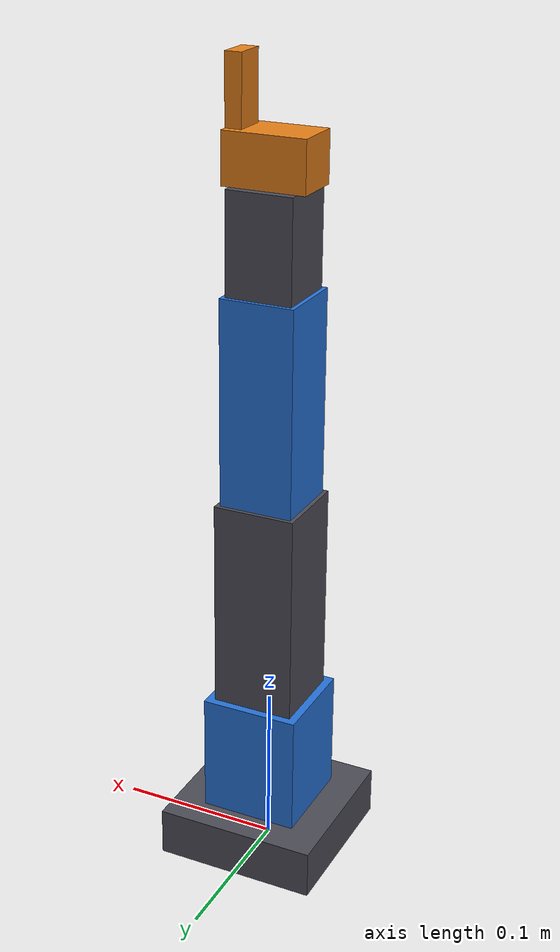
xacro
<?xml version="1.0"?>
<robot xmlns:xacro="http://www.ros.org/wiki/xacro" name="so101">

  <xacro:arg name="use_placeholder" default="true"/>

  <xacro:if value="$(arg use_placeholder)">
    <xacro:include filename="$(find so101_description)/urdf/so101_placeholder.urdf.xacro"/>
  </xacro:if>

  <xacro:unless value="$(arg use_placeholder)">
    <!-- TODO(hardware): provide urdf/so101_official.urdf.xacro per FETCH_OFFICIAL_URDF.md -->
    <xacro:include filename="$(find so101_description)/urdf/so101_official.urdf.xacro"/>
  </xacro:unless>

</robot>

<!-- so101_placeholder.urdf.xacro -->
<robot xmlns:xacro="http://www.ros.org/wiki/xacro" name="so101">

  <!-- ── Link lengths (m), from robot_system/kinematics/geometry.py ────────── -->
  <xacro:property name="L0" value="0.075"/>   <!-- base plate -> shoulder pivot -->
  <xacro:property name="L1" value="0.130"/>   <!-- shoulder -> elbow            -->
  <xacro:property name="L2" value="0.125"/>   <!-- elbow -> wrist               -->
  <xacro:property name="L3" value="0.060"/>   <!-- wrist -> gripper tip          -->

  <!-- ── Joint limits (rad) — derived from config.py tick ranges, see TODO ── -->
  <!-- scale = 2*pi / 4096 ≈ 0.001534 rad/tick about centre 2048              -->
  <xacro:property name="base_lo"     value="-3.14"/>  <!-- TODO: base tick range not in config -->
  <xacro:property name="base_hi"     value="3.14"/>
  <xacro:property name="shoulder_lo" value="-1.61"/>  <!-- SH_MIN 1000 -->
  <xacro:property name="shoulder_hi" value="1.46"/>   <!-- SH_MAX 3000 -->
  <xacro:property name="elbow_lo"    value="-2.53"/>  <!-- EL_MIN 400  -->
  <xacro:property name="elbow_hi"    value="1.46"/>   <!-- EL_MAX 3000 -->
  <xacro:property name="palm_lo"     value="-1.61"/>  <!-- PALM_MIN 1000 -->
  <xacro:property name="palm_hi"     value="2.23"/>   <!-- PALM_MAX 3500 -->
  <xacro:property name="wrist_lo"    value="-3.14"/>  <!-- TODO: wrist range not in config -->
  <xacro:property name="wrist_hi"    value="3.14"/>
  <xacro:property name="gripper_lo"  value="-0.84"/>  <!-- GRIPPER_CLOSE 2100 -->
  <xacro:property name="gripper_hi"  value="1.46"/>   <!-- GRIPPER_OPEN 3000  -->

  <xacro:property name="effort"   value="10.0"/>
  <xacro:property name="velocity" value="3.0"/>

  <!-- ── Colours ───────────────────────────────────────────────────────────── -->
  <material name="so101_grey"><color rgba="0.3 0.3 0.34 1.0"/></material>
  <material name="so101_blue"><color rgba="0.15 0.45 0.85 1.0"/></material>
  <material name="so101_orange"><color rgba="0.9 0.5 0.1 1.0"/></material>

  <!-- Convenience macro for a simple box link with matching collision. -->
  <xacro:macro name="box_link" params="name x y z mat *origin">
    <link name="${name}">
      <visual>
        <xacro:insert_block name="origin"/>
        <geometry><box size="${x} ${y} ${z}"/></geometry>
        <material name="${mat}"/>
      </visual>
      <collision>
        <xacro:insert_block name="origin"/>
        <geometry><box size="${x} ${y} ${z}"/></geometry>
      </collision>
      <inertial>
        <mass value="0.1"/>
        <inertia ixx="1e-4" iyy="1e-4" izz="1e-4" ixy="0" ixz="0" iyz="0"/>
      </inertial>
    </link>
  </xacro:macro>

  <!-- ── base_link (root / fixed world frame) ───────────────────────────────── -->
  <xacro:box_link name="base_link" x="0.10" y="0.10" z="0.03" mat="so101_grey">
    <origin xyz="0 0 0.015" rpy="0 0 0"/>
  </xacro:box_link>

  <!-- ── base joint: yaw about Z ────────────────────────────────────────────── -->
  <xacro:box_link name="shoulder_link" x="0.06" y="0.06" z="${L0}" mat="so101_blue">
    <origin xyz="0 0 ${L0/2}" rpy="0 0 0"/>
  </xacro:box_link>
  <joint name="base" type="revolute">
    <parent link="base_link"/>
    <child  link="shoulder_link"/>
    <origin xyz="0 0 0.03" rpy="0 0 0"/>
    <axis xyz="0 0 1"/>
    <limit lower="${base_lo}" upper="${base_hi}" effort="${effort}" velocity="${velocity}"/>
  </joint>

  <!-- ── shoulder joint: pitch about Y ──────────────────────────────────────── -->
  <xacro:box_link name="upper_arm_link" x="0.05" y="0.05" z="${L1}" mat="so101_grey">
    <origin xyz="0 0 ${L1/2}" rpy="0 0 0"/>
  </xacro:box_link>
  <joint name="shoulder" type="revolute">
    <parent link="shoulder_link"/>
    <child  link="upper_arm_link"/>
    <origin xyz="0 0 ${L0}" rpy="0 0 0"/>
    <axis xyz="0 1 0"/>
    <limit lower="${shoulder_lo}" upper="${shoulder_hi}" effort="${effort}" velocity="${velocity}"/>
  </joint>

  <!-- ── elbow joint: pitch about Y ─────────────────────────────────────────── -->
  <xacro:box_link name="forearm_link" x="0.045" y="0.045" z="${L2}" mat="so101_blue">
    <origin xyz="0 0 ${L2/2}" rpy="0 0 0"/>
  </xacro:box_link>
  <joint name="elbow" type="revolute">
    <parent link="upper_arm_link"/>
    <child  link="forearm_link"/>
    <origin xyz="0 0 ${L1}" rpy="0 0 0"/>
    <axis xyz="0 1 0"/>
    <limit lower="${elbow_lo}" upper="${elbow_hi}" effort="${effort}" velocity="${velocity}"/>
  </joint>

  <!-- ── palm joint: pitch about Y (wrist flex) ─────────────────────────────── -->
  <xacro:box_link name="wrist_link" x="0.04" y="0.04" z="${L3}" mat="so101_grey">
    <origin xyz="0 0 ${L3/2}" rpy="0 0 0"/>
  </xacro:box_link>
  <joint name="palm" type="revolute">
    <parent link="forearm_link"/>
    <child  link="wrist_link"/>
    <origin xyz="0 0 ${L2}" rpy="0 0 0"/>
    <axis xyz="0 1 0"/>
    <limit lower="${palm_lo}" upper="${palm_hi}" effort="${effort}" velocity="${velocity}"/>
  </joint>

  <!-- ── wrist joint: roll about Z (wrist rotate) ───────────────────────────── -->
  <xacro:box_link name="gripper_base_link" x="0.05" y="0.03" z="0.03" mat="so101_orange">
    <origin xyz="0 0 0.015" rpy="0 0 0"/>
  </xacro:box_link>
  <joint name="wrist" type="revolute">
    <parent link="wrist_link"/>
    <child  link="gripper_base_link"/>
    <origin xyz="0 0 ${L3}" rpy="0 0 0"/>
    <axis xyz="0 0 1"/>
    <limit lower="${wrist_lo}" upper="${wrist_hi}" effort="${effort}" velocity="${velocity}"/>
  </joint>

  <!-- ── gripper joint: one moving finger (visual only) ─────────────────────── -->
  <xacro:box_link name="gripper_finger_link" x="0.01" y="0.02" z="0.04" mat="so101_orange">
    <origin xyz="0 0 0.02" rpy="0 0 0"/>
  </xacro:box_link>
  <joint name="gripper" type="revolute">
    <parent link="gripper_base_link"/>
    <child  link="gripper_finger_link"/>
    <origin xyz="0.02 0 0.03" rpy="0 0 0"/>
    <axis xyz="0 1 0"/>
    <limit lower="${gripper_lo}" upper="${gripper_hi}" effort="${effort}" velocity="${velocity}"/>
  </joint>

  <!-- Tool-centre-point frame for later phases (calibration, grasp targets). -->
  <link name="tool0"/>
  <joint name="tool0_fixed" type="fixed">
    <parent link="gripper_base_link"/>
    <child  link="tool0"/>
    <origin xyz="0.04 0 0.03" rpy="0 0 0"/>
  </joint>

</robot>
